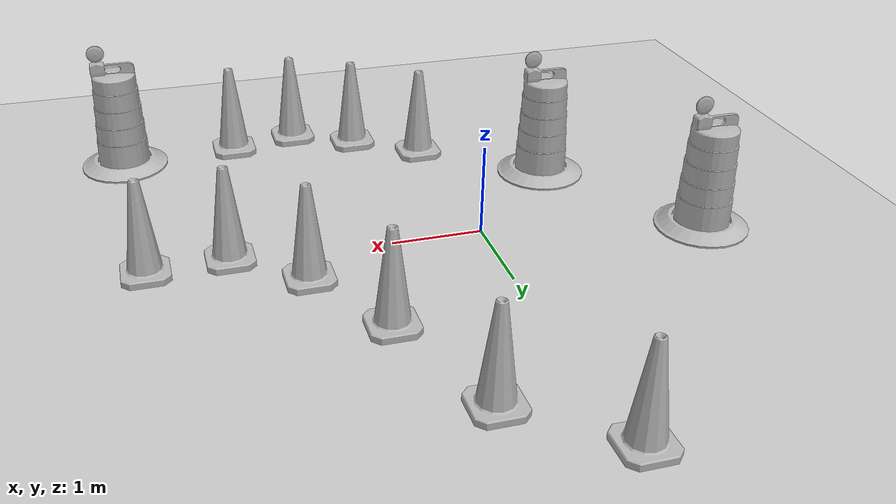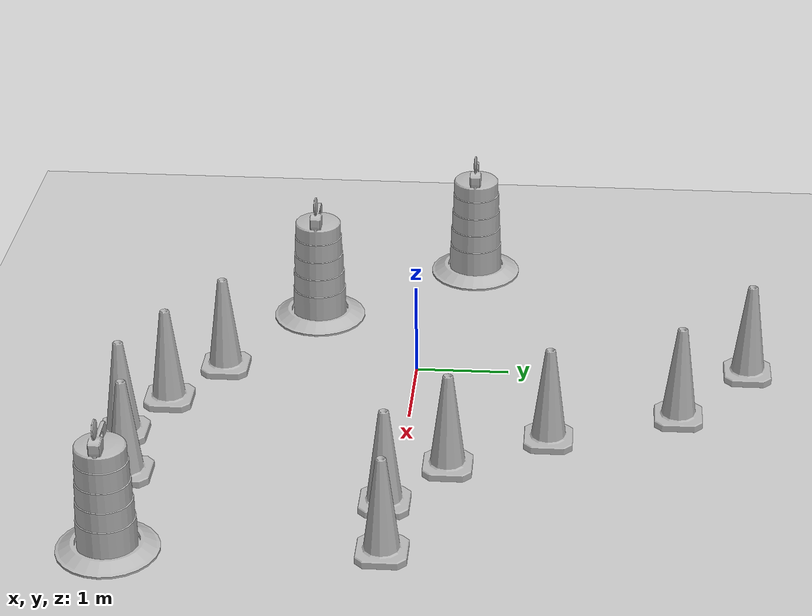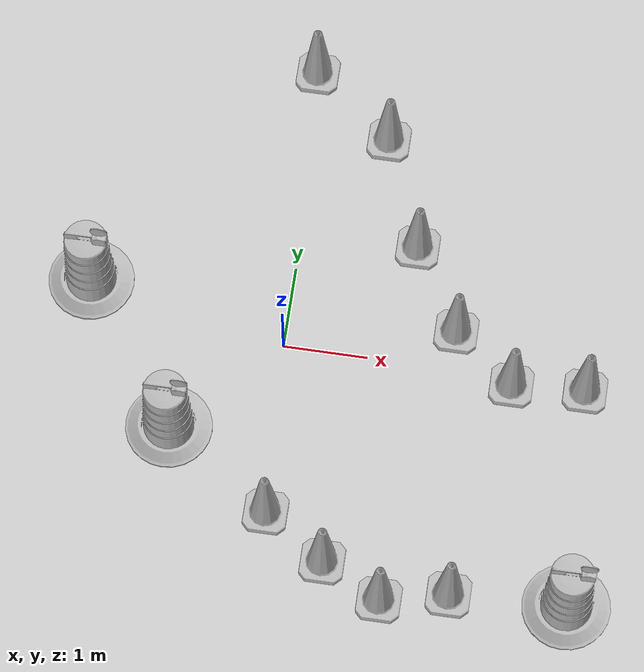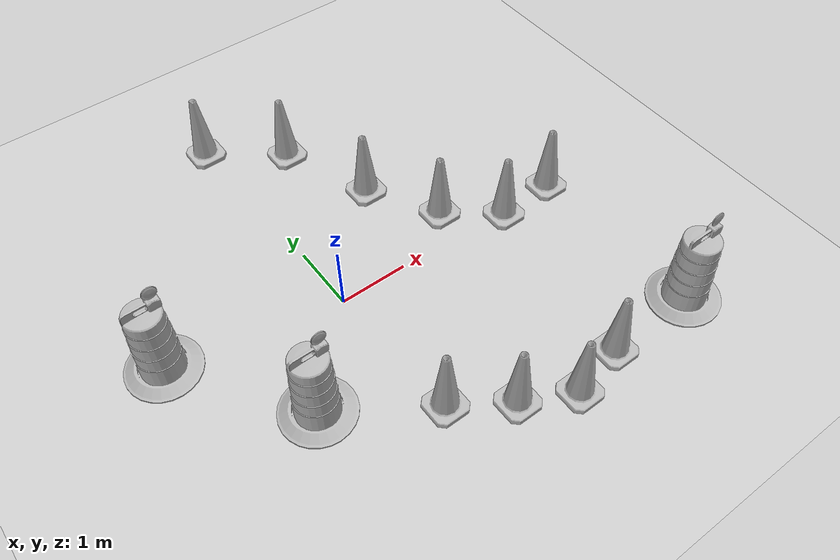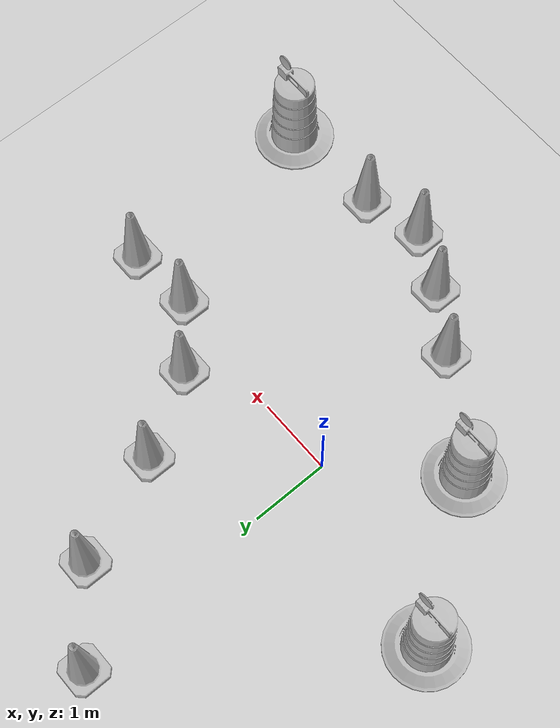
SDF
<sdf version="1.7">
 <world name="default">
  <light name="sun" type="directional">
   <pose>0 0 10 0 -0 0</pose>
   <diffuse>0.8 0.8 0.8 1</diffuse>
   <specular>0.2 0.2 0.2 1</specular>
   <attenuation>
    <range>1000</range>
    <constant>0.9</constant>
    <linear>0.01</linear>
    <quadratic>0.001</quadratic>
   </attenuation>
   <direction>-0.5 0.1 -0.9</direction>
   <spot><inner_angle>0</inner_angle><outer_angle>0</outer_angle><falloff>0</falloff></spot>
  </light>
  <model name="ground_plane">
   <static>1</static>
   <link name="link">
    <collision name="collision">
     <geometry><plane><normal>0 0 1</normal><size>100 100</size></plane></geometry>
     <surface>
      <contact><collide_bitmask>65535</collide_bitmask></contact>
      <friction><ode><mu>100</mu><mu2>50</mu2></ode></friction>
     </surface>
    </collision>
    <visual name="visual">
     <cast_shadows>0</cast_shadows>
     <geometry><plane><normal>0 0 1</normal><size>100 100</size></plane></geometry>
     <material>
      <script><uri>file://media/materials/scripts/gazebo.material</uri><name>Gazebo/Grey</name></script>
     </material>
    </visual>
   </link>
  </model>
  <gravity>0 0 -9.8</gravity>
  <magnetic_field>6e-06 2.3e-05 -4.2e-05</magnetic_field>
  <atmosphere type="adiabatic"/>
  <physics type="ode">
   <max_step_size>0.001</max_step_size>
   <real_time_factor>1</real_time_factor>
   <real_time_update_rate>1000</real_time_update_rate>
  </physics>
  <scene><ambient>0.4 0.4 0.4 1</ambient><background>0.7 0.7 0.7 1</background><shadows>1</shadows></scene>
  <spherical_coordinates>
   <surface_model>EARTH_WGS84</surface_model>
   <latitude_deg>0</latitude_deg>
   <longitude_deg>0</longitude_deg>
   <elevation>0</elevation>
   <heading_deg>0</heading_deg>
  </spherical_coordinates>
  <model name="Construction Cone">
   <link name="link">
    <collision name="collision">
     <geometry>
      <mesh><scale>10 10 10</scale><uri>model://construction_cone/meshes/construction_cone.dae</uri></mesh>
     </geometry>
    </collision>
    <visual name="visual">
     <geometry>
      <mesh><scale>10 10 10</scale><uri>model://construction_cone/meshes/construction_cone.dae</uri></mesh>
     </geometry>
    </visual>
    <inertial>
     <inertia><ixx>1</ixx><ixy>0</ixy><ixz>0</ixz><iyy>1</iyy><iyz>0</iyz><izz>1</izz></inertia>
     <mass>1</mass>
    </inertial>
   </link>
   <pose>0.111306 -2.07674 -0 0 -0 0</pose>
  </model>
  <model name="Construction Cone_0">
   <link name="link">
    <collision name="collision">
     <geometry>
      <mesh><scale>10 10 10</scale><uri>model://construction_cone/meshes/construction_cone.dae</uri></mesh>
     </geometry>
    </collision>
    <visual name="visual">
     <geometry>
      <mesh><scale>10 10 10</scale><uri>model://construction_cone/meshes/construction_cone.dae</uri></mesh>
     </geometry>
    </visual>
    <inertial>
     <inertia><ixx>1</ixx><ixy>0</ixy><ixz>0</ixz><iyy>1</iyy><iyz>0</iyz><izz>1</izz></inertia>
     <mass>1</mass>
    </inertial>
   </link>
   <pose>0.844689 -2.57688 -1e-05 -1e-06 0 0</pose>
  </model>
  <model name="Construction Cone_1">
   <link name="link">
    <collision name="collision">
     <geometry>
      <mesh><scale>10 10 10</scale><uri>model://construction_cone/meshes/construction_cone.dae</uri></mesh>
     </geometry>
    </collision>
    <visual name="visual">
     <geometry>
      <mesh><scale>10 10 10</scale><uri>model://construction_cone/meshes/construction_cone.dae</uri></mesh>
     </geometry>
    </visual>
    <inertial>
     <inertia><ixx>1</ixx><ixy>0</ixy><ixz>0</ixz><iyy>1</iyy><iyz>0</iyz><izz>1</izz></inertia>
     <mass>1</mass>
    </inertial>
   </link>
   <pose>1.55021 -2.93672 -0 0 -1e-06 0</pose>
  </model>
  <model name="Construction Cone_2">
   <link name="link">
    <collision name="collision">
     <geometry>
      <mesh><scale>10 10 10</scale><uri>model://construction_cone/meshes/construction_cone.dae</uri></mesh>
     </geometry>
    </collision>
    <visual name="visual">
     <geometry>
      <mesh><scale>10 10 10</scale><uri>model://construction_cone/meshes/construction_cone.dae</uri></mesh>
     </geometry>
    </visual>
    <inertial>
     <inertia><ixx>1</ixx><ixy>0</ixy><ixz>0</ixz><iyy>1</iyy><iyz>0</iyz><izz>1</izz></inertia>
     <mass>1</mass>
    </inertial>
   </link>
   <pose>2.32795 -2.76145 -1e-05 0 -0 0</pose>
  </model>
  <model name="Construction Barrel">
   <link name="link">
    <inertial>
     <pose>0 0 0.4 0 -0 0</pose>
     <mass>500</mass>
     <inertia><ixx>51.2096</ixx><iyy>51.2096</iyy><izz>25</izz><ixy>0</ixy><ixz>0</ixz><iyz>0</iyz></inertia>
    </inertial>
    <collision name="collision">
     <geometry><mesh><uri>model://construction_barrel/meshes/construction_barrel.dae</uri></mesh></geometry>
    </collision>
    <visual name="visual">
     <geometry><mesh><uri>model://construction_barrel/meshes/construction_barrel.dae</uri></mesh></geometry>
    </visual>
   </link>
   <pose>-1.16647 -1.18716 -1e-06 -3e-06 -1e-06 -1.6e-05</pose>
  </model>
  <model name="Construction Cone_3">
   <link name="link">
    <collision name="collision">
     <geometry>
      <mesh><scale>10 10 10</scale><uri>model://construction_cone/meshes/construction_cone.dae</uri></mesh>
     </geometry>
    </collision>
    <visual name="visual">
     <geometry>
      <mesh><scale>10 10 10</scale><uri>model://construction_cone/meshes/construction_cone.dae</uri></mesh>
     </geometry>
    </visual>
    <inertial>
     <inertia><ixx>1</ixx><ixy>0</ixy><ixz>0</ixz><iyy>1</iyy><iyz>0</iyz><izz>1</izz></inertia>
     <mass>1</mass>
    </inertial>
   </link>
   <pose>2.71747 -0.109436 -0 0 -1e-06 0</pose>
  </model>
  <model name="Construction Cone_4">
   <link name="link">
    <collision name="collision">
     <geometry>
      <mesh><scale>10 10 10</scale><uri>model://construction_cone/meshes/construction_cone.dae</uri></mesh>
     </geometry>
    </collision>
    <visual name="visual">
     <geometry>
      <mesh><scale>10 10 10</scale><uri>model://construction_cone/meshes/construction_cone.dae</uri></mesh>
     </geometry>
    </visual>
    <inertial>
     <inertia><ixx>1</ixx><ixy>0</ixy><ixz>0</ixz><iyy>1</iyy><iyz>0</iyz><izz>1</izz></inertia>
     <mass>1</mass>
    </inertial>
   </link>
   <pose>3.57999 -0.059377 -0 0 -0 0</pose>
  </model>
  <model name="Construction Cone_5">
   <link name="link">
    <collision name="collision">
     <geometry>
      <mesh><scale>10 10 10</scale><uri>model://construction_cone/meshes/construction_cone.dae</uri></mesh>
     </geometry>
    </collision>
    <visual name="visual">
     <geometry>
      <mesh><scale>10 10 10</scale><uri>model://construction_cone/meshes/construction_cone.dae</uri></mesh>
     </geometry>
    </visual>
    <inertial>
     <inertia><ixx>1</ixx><ixy>0</ixy><ixz>0</ixz><iyy>1</iyy><iyz>0</iyz><izz>1</izz></inertia>
     <mass>1</mass>
    </inertial>
   </link>
   <pose>1.99228 0.469292 -0 0 -0 0</pose>
  </model>
  <model name="Construction Cone_6">
   <link name="link">
    <collision name="collision">
     <geometry>
      <mesh><scale>10 10 10</scale><uri>model://construction_cone/meshes/construction_cone.dae</uri></mesh>
     </geometry>
    </collision>
    <visual name="visual">
     <geometry>
      <mesh><scale>10 10 10</scale><uri>model://construction_cone/meshes/construction_cone.dae</uri></mesh>
     </geometry>
    </visual>
    <inertial>
     <inertia><ixx>1</ixx><ixy>0</ixy><ixz>0</ixz><iyy>1</iyy><iyz>0</iyz><izz>1</izz></inertia>
     <mass>1</mass>
    </inertial>
   </link>
   <pose>1.39827 1.47556 -0 0 -1e-06 0</pose>
  </model>
  <model name="Construction Cone_7">
   <link name="link">
    <collision name="collision">
     <geometry>
      <mesh><scale>10 10 10</scale><uri>model://construction_cone/meshes/construction_cone.dae</uri></mesh>
     </geometry>
    </collision>
    <visual name="visual">
     <geometry>
      <mesh><scale>10 10 10</scale><uri>model://construction_cone/meshes/construction_cone.dae</uri></mesh>
     </geometry>
    </visual>
    <inertial>
     <inertia><ixx>1</ixx><ixy>0</ixy><ixz>0</ixz><iyy>1</iyy><iyz>0</iyz><izz>1</izz></inertia>
     <mass>1</mass>
    </inertial>
   </link>
   <pose>0.863498 2.82478 -0 0 -1e-06 0</pose>
  </model>
  <model name="Construction Barrel_0">
   <link name="link">
    <inertial>
     <pose>0 0 0.4 0 -0 0</pose>
     <mass>500</mass>
     <inertia><ixx>51.2096</ixx><iyy>51.2096</iyy><izz>25</izz><ixy>0</ixy><ixz>0</ixz><iyz>0</iyz></inertia>
    </inertial>
    <collision name="collision">
     <geometry><mesh><uri>model://construction_barrel/meshes/construction_barrel.dae</uri></mesh></geometry>
    </collision>
    <visual name="visual">
     <geometry><mesh><uri>model://construction_barrel/meshes/construction_barrel.dae</uri></mesh></geometry>
    </visual>
   </link>
   <pose>-2.37725 0.51331 0 -0 1e-06 -8e-06</pose>
  </model>
  <model name="Construction Cone_8">
   <link name="link">
    <collision name="collision">
     <geometry>
      <mesh><scale>10 10 10</scale><uri>model://construction_cone/meshes/construction_cone.dae</uri></mesh>
     </geometry>
    </collision>
    <visual name="visual">
     <geometry>
      <mesh><scale>10 10 10</scale><uri>model://construction_cone/meshes/construction_cone.dae</uri></mesh>
     </geometry>
    </visual>
    <inertial>
     <inertia><ixx>1</ixx><ixy>0</ixy><ixz>0</ixz><iyy>1</iyy><iyz>0</iyz><izz>1</izz></inertia>
     <mass>1</mass>
    </inertial>
   </link>
   <pose>-0.116094 3.59068 -0 0 -1e-06 0</pose>
  </model>
  <model name="Construction Barrel_1">
   <link name="link">
    <inertial>
     <pose>0 0 0.4 0 -0 0</pose>
     <mass>500</mass>
     <inertia><ixx>51.2096</ixx><iyy>51.2096</iyy><izz>25</izz><ixy>0</ixy><ixz>0</ixz><iyz>0</iyz></inertia>
    </inertial>
    <collision name="collision">
     <geometry><mesh><uri>model://construction_barrel/meshes/construction_barrel.dae</uri></mesh></geometry>
    </collision>
    <visual name="visual">
     <geometry><mesh><uri>model://construction_barrel/meshes/construction_barrel.dae</uri></mesh></geometry>
    </visual>
   </link>
   <pose>3.67356 -2.7007 -0 0 -0 -4e-06</pose>
  </model>
 </world>
</sdf>
